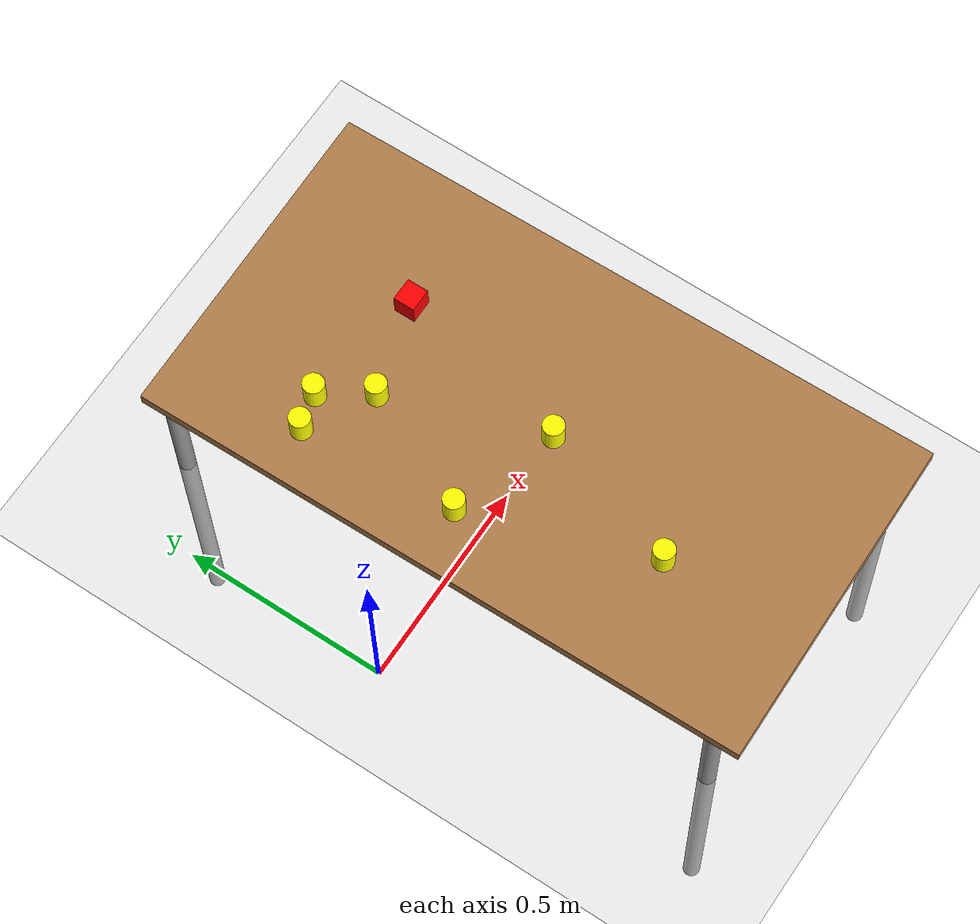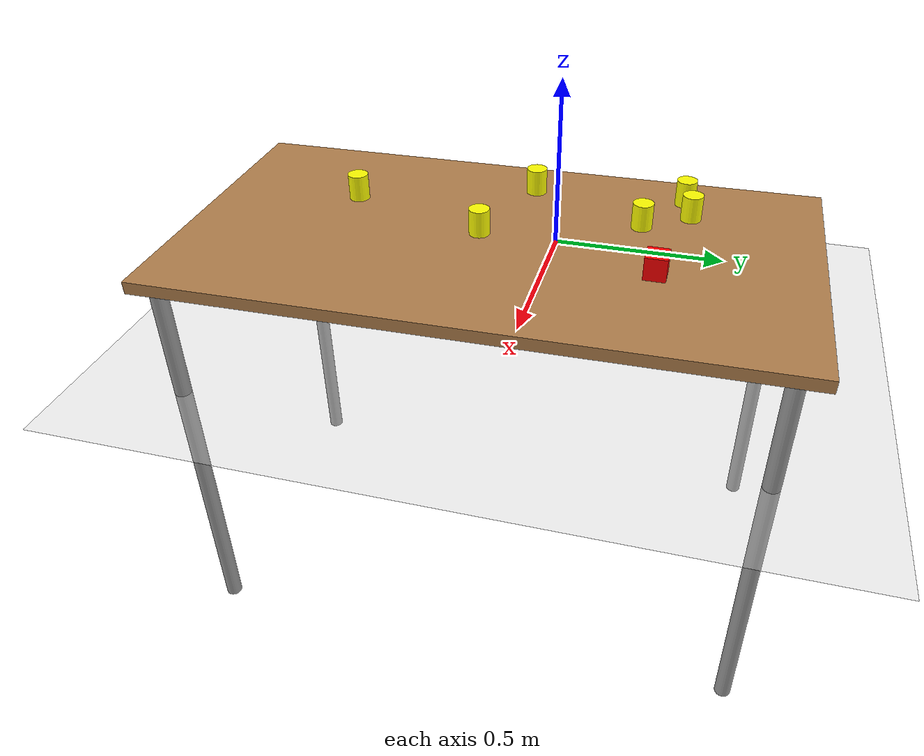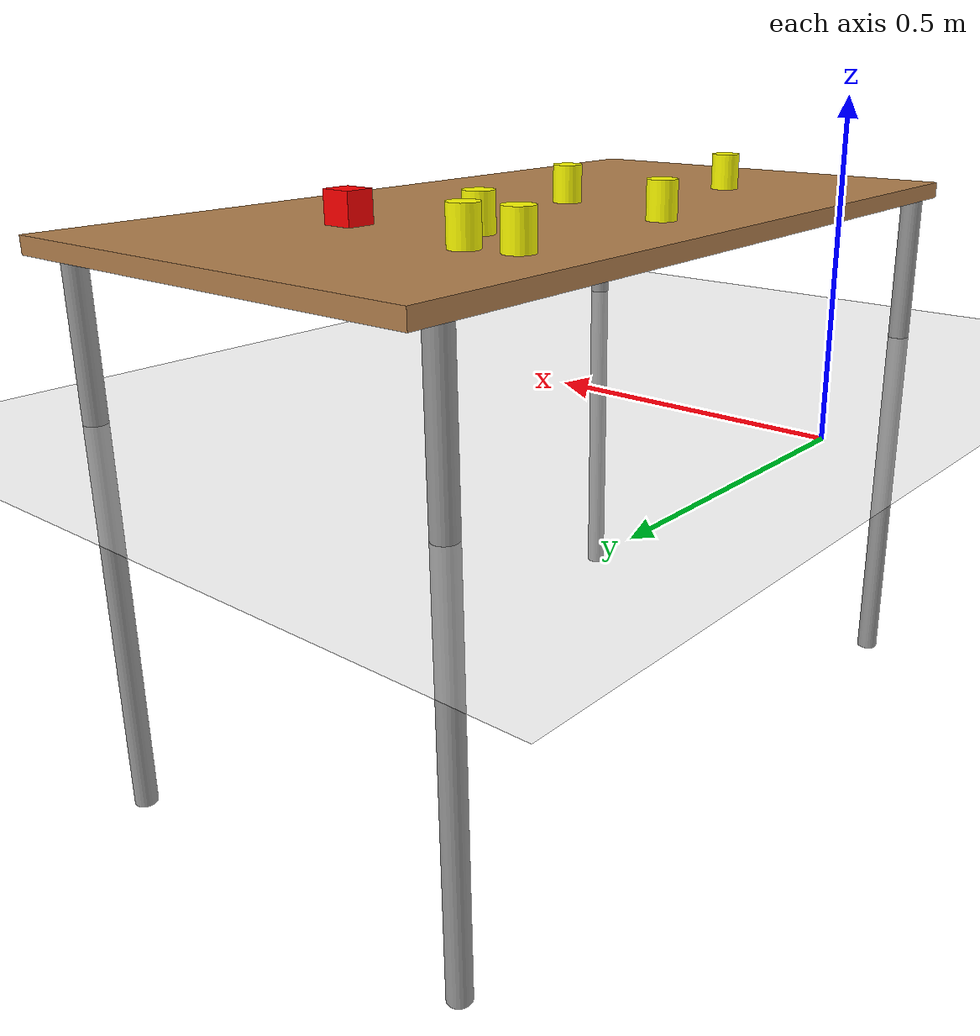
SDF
<sdf version="1.7">
 <world name="default">
  <light name="sun" type="directional">
   <pose>0 0 10 0 -0 0</pose>
   <diffuse>0.8 0.8 0.8 1</diffuse>
   <specular>0.2 0.2 0.2 1</specular>
   <attenuation>
    <range>1000</range>
    <constant>0.9</constant>
    <linear>0.01</linear>
    <quadratic>0.001</quadratic>
   </attenuation>
   <direction>-0.5 0.1 -0.9</direction>
   <spot><inner_angle>0</inner_angle><outer_angle>0</outer_angle><falloff>0</falloff></spot>
  </light>
  <model name="ground_plane">
   <static>1</static>
   <link name="link">
    <collision name="collision">
     <geometry><plane><normal>0 0 1</normal><size>100 100</size></plane></geometry>
     <surface>
      <contact><collide_bitmask>65535</collide_bitmask></contact>
      <friction><ode><mu>100</mu><mu2>50</mu2></ode></friction>
     </surface>
    </collision>
    <visual name="visual">
     <cast_shadows>0</cast_shadows>
     <geometry><plane><normal>0 0 1</normal><size>100 100</size></plane></geometry>
     <material>
      <script><uri>file://media/materials/scripts/gazebo.material</uri><name>Gazebo/Grey</name></script>
     </material>
    </visual>
   </link>
  </model>
  <gravity>0 0 -9.8</gravity>
  <magnetic_field>6e-06 2.3e-05 -4.2e-05</magnetic_field>
  <atmosphere type="adiabatic"/>
  <physics name="default_physics" default="0" type="ode">
   <max_step_size>0.001</max_step_size>
   <real_time_factor>1</real_time_factor>
   <real_time_update_rate>1000</real_time_update_rate>
  </physics>
  <scene><ambient>0.4 0.4 0.4 1</ambient><background>0.7 0.7 0.7 1</background><shadows>1</shadows></scene>
  <spherical_coordinates>
   <surface_model>EARTH_WGS84</surface_model>
   <latitude_deg>0</latitude_deg>
   <longitude_deg>0</longitude_deg>
   <elevation>0</elevation>
   <heading_deg>0</heading_deg>
  </spherical_coordinates>
  <model name="table">
   <static>1</static>
   <link name="link">
    <collision name="surface">
     <pose>0 0 1 0 -0 0</pose>
     <geometry><box><size>1.5 0.8 0.03</size></box></geometry>
     <surface><friction><ode><mu>0.6</mu><mu2>0.6</mu2></ode></friction></surface>
    </collision>
    <visual name="visual1">
     <pose>0 0 1 0 -0 0</pose>
     <geometry><box><size>1.5 0.8 0.03</size></box></geometry>
     <material>
      <script><uri>file://media/materials/scripts/gazebo.material</uri><name>Gazebo/Wood</name></script>
     </material>
    </visual>
    <collision name="front_left_leg">
     <pose>0.68 0.38 0.5 0 -0 0</pose>
     <geometry><cylinder><radius>0.02</radius><length>1</length></cylinder></geometry>
    </collision>
    <visual name="front_left_leg">
     <pose>0.68 0.38 0.5 0 -0 0</pose>
     <geometry><cylinder><radius>0.02</radius><length>1</length></cylinder></geometry>
     <material>
      <script><uri>file://media/materials/scripts/gazebo.material</uri><name>Gazebo/Grey</name></script>
     </material>
    </visual>
    <collision name="front_right_leg">
     <pose>0.68 -0.38 0.5 0 -0 0</pose>
     <geometry><cylinder><radius>0.02</radius><length>1</length></cylinder></geometry>
    </collision>
    <visual name="front_right_leg">
     <pose>0.68 -0.38 0.5 0 -0 0</pose>
     <geometry><cylinder><radius>0.02</radius><length>1</length></cylinder></geometry>
     <material>
      <script><uri>file://media/materials/scripts/gazebo.material</uri><name>Gazebo/Grey</name></script>
     </material>
    </visual>
    <collision name="back_right_leg">
     <pose>-0.68 -0.38 0.5 0 -0 0</pose>
     <geometry><cylinder><radius>0.02</radius><length>1</length></cylinder></geometry>
    </collision>
    <visual name="back_right_leg">
     <pose>-0.68 -0.38 0.5 0 -0 0</pose>
     <geometry><cylinder><radius>0.02</radius><length>1</length></cylinder></geometry>
     <material>
      <script><uri>file://media/materials/scripts/gazebo.material</uri><name>Gazebo/Grey</name></script>
     </material>
    </visual>
    <collision name="back_left_leg">
     <pose>-0.68 0.38 0.5 0 -0 0</pose>
     <geometry><cylinder><radius>0.02</radius><length>1</length></cylinder></geometry>
    </collision>
    <visual name="back_left_leg">
     <pose>-0.68 0.38 0.5 0 -0 0</pose>
     <geometry><cylinder><radius>0.02</radius><length>1</length></cylinder></geometry>
     <material>
      <script><uri>file://media/materials/scripts/gazebo.material</uri><name>Gazebo/Grey</name></script>
     </material>
    </visual>
   </link>
   <pose>0.566212 -0.031995 -0.712212 0 -0 1.5857</pose>
  </model>
  <model name="Untitled_clone_0">
   <link name="link_0">
    <inertial>
     <mass>0.00511254</mass>
     <inertia>
      <ixx>2.491e-05</ixx>
      <ixy>0</ixy>
      <ixz>0</ixz>
      <iyy>2.97e-05</iyy>
      <iyz>0</iyz>
      <izz>2.319e-05</izz>
     </inertia>
    </inertial>
    <visual name="visual">
     <geometry><box><size>0.05539 0.05172 0.055441</size></box></geometry>
     <material>
      <lighting>1</lighting>
      <script><uri>file://media/materials/scripts/gazebo.material</uri><name>Gazebo/Grey</name></script>
      <shader type="pixel"><normal_map>__default__</normal_map></shader>
      <ambient>1 0 0 0</ambient>
      <diffuse>1 0 0 1</diffuse>
      <specular>1 0.01 0 1</specular>
      <emissive>0 0 0 1</emissive>
     </material>
    </visual>
    <collision name="collision">
     <geometry><box><size>0.05539 0.05172 0.055441</size></box></geometry>
     <surface>
      <friction>
       <ode><mu>1</mu><mu2>1</mu2><fdir1>0 0 0</fdir1><slip1>0</slip1><slip2>0</slip2></ode>
       <torsional>
        <coefficient>1</coefficient>
        <patch_radius>0</patch_radius>
        <surface_radius>0</surface_radius>
        <use_patch_radius>1</use_patch_radius>
        <ode><slip>0</slip></ode>
       </torsional>
      </friction>
      <bounce><restitution_coefficient>0</restitution_coefficient><threshold>1e+06</threshold></bounce>
      <contact>
       <collide_without_contact>0</collide_without_contact>
       <collide_without_contact_bitmask>1</collide_without_contact_bitmask>
       <collide_bitmask>1</collide_bitmask>
       <ode>
        <soft_cfm>0</soft_cfm>
        <soft_erp>0.2</soft_erp>
        <kp>1e+13</kp>
        <kd>1</kd>
        <max_vel>0.01</max_vel>
        <min_depth>0</min_depth>
       </ode>
       <bullet>
        <split_impulse>1</split_impulse>
        <split_impulse_penetration_threshold>-0.01</split_impulse_penetration_threshold>
        <soft_cfm>0</soft_cfm>
        <soft_erp>0.2</soft_erp>
        <kp>1e+13</kp>
        <kd>1</kd>
       </bullet>
      </contact>
     </surface>
    </collision>
   </link>
   <static>0</static>
   <pose>0.653564 0.347624 0.330499 -3.14159 -0 -3.14108</pose>
  </model>
  <model name="unit_cylinder">
   <link name="link">
    <inertial>
     <mass>1</mass>
     <inertia><ixx>0.145833</ixx><ixy>0</ixy><ixz>0</ixz><iyy>0.145833</iyy><iyz>0</iyz><izz>0.125</izz></inertia>
    </inertial>
    <visual name="visual">
     <geometry><cylinder><radius>0.0252148</radius><length>0.0648922</length></cylinder></geometry>
     <material>
      <script><name>Gazebo/Grey</name><uri>file://media/materials/scripts/gazebo.material</uri></script>
      <shader type="pixel"><normal_map>__default__</normal_map></shader>
      <ambient>1 1 0 0</ambient>
      <diffuse>1 1 0 0</diffuse>
      <specular>1 1 0 0</specular>
      <emissive>1 1 0 0</emissive>
     </material>
    </visual>
    <collision name="collision">
     <geometry><cylinder><radius>0.025215</radius><length>0.064892</length></cylinder></geometry>
     <surface>
      <friction>
       <ode><mu>1</mu><mu2>1</mu2><fdir1>0 0 0</fdir1><slip1>0</slip1><slip2>0</slip2></ode>
       <torsional>
        <coefficient>1</coefficient>
        <patch_radius>0</patch_radius>
        <surface_radius>0</surface_radius>
        <use_patch_radius>1</use_patch_radius>
        <ode><slip>0</slip></ode>
       </torsional>
      </friction>
      <bounce><restitution_coefficient>0</restitution_coefficient><threshold>1e+06</threshold></bounce>
      <contact>
       <collide_without_contact>0</collide_without_contact>
       <collide_without_contact_bitmask>1</collide_without_contact_bitmask>
       <collide_bitmask>1</collide_bitmask>
       <ode>
        <soft_cfm>0</soft_cfm>
        <soft_erp>0.2</soft_erp>
        <kp>1e+13</kp>
        <kd>1</kd>
        <max_vel>0.01</max_vel>
        <min_depth>0</min_depth>
       </ode>
       <bullet>
        <split_impulse>1</split_impulse>
        <split_impulse_penetration_threshold>-0.01</split_impulse_penetration_threshold>
        <soft_cfm>0</soft_cfm>
        <soft_erp>0.2</soft_erp>
        <kp>1e+13</kp>
        <kd>1</kd>
       </bullet>
      </contact>
     </surface>
    </collision>
   </link>
   <static>0</static>
   <pose>0.280905 0.3776 0.335241 -0.000155 0.00023 0.503097</pose>
  </model>
  <model name="unit_cylinder_clone">
   <link name="link">
    <inertial>
     <mass>1</mass>
     <inertia><ixx>0.145833</ixx><ixy>0</ixy><ixz>0</ixz><iyy>0.145833</iyy><iyz>0</iyz><izz>0.125</izz></inertia>
    </inertial>
    <visual name="visual">
     <geometry><cylinder><radius>0.0252148</radius><length>0.0648922</length></cylinder></geometry>
     <material>
      <script><name>Gazebo/Grey</name><uri>file://media/materials/scripts/gazebo.material</uri></script>
      <shader type="pixel"><normal_map>__default__</normal_map></shader>
      <ambient>1 1 0 0</ambient>
      <diffuse>1 1 0 0</diffuse>
      <specular>1 1 0 0</specular>
      <emissive>1 1 0 0</emissive>
     </material>
    </visual>
    <collision name="collision">
     <geometry><cylinder><radius>0.025215</radius><length>0.064892</length></cylinder></geometry>
     <surface>
      <friction>
       <ode><mu>1</mu><mu2>1</mu2><fdir1>0 0 0</fdir1><slip1>0</slip1><slip2>0</slip2></ode>
       <torsional>
        <coefficient>1</coefficient>
        <patch_radius>0</patch_radius>
        <surface_radius>0</surface_radius>
        <use_patch_radius>1</use_patch_radius>
        <ode><slip>0</slip></ode>
       </torsional>
      </friction>
      <bounce><restitution_coefficient>0</restitution_coefficient><threshold>1e+06</threshold></bounce>
      <contact>
       <collide_without_contact>0</collide_without_contact>
       <collide_without_contact_bitmask>1</collide_without_contact_bitmask>
       <collide_bitmask>1</collide_bitmask>
       <ode>
        <soft_cfm>0</soft_cfm>
        <soft_erp>0.2</soft_erp>
        <kp>1e+13</kp>
        <kd>1</kd>
        <max_vel>0.01</max_vel>
        <min_depth>0</min_depth>
       </ode>
       <bullet>
        <split_impulse>1</split_impulse>
        <split_impulse_penetration_threshold>-0.01</split_impulse_penetration_threshold>
        <soft_cfm>0</soft_cfm>
        <soft_erp>0.2</soft_erp>
        <kp>1e+13</kp>
        <kd>1</kd>
       </bullet>
      </contact>
     </surface>
    </collision>
   </link>
   <static>0</static>
   <pose>0.435006 0.288002 0.335232 -0.000309 -6.6e-05 -5.1e-05</pose>
  </model>
  <model name="unit_cylinder_clone_0">
   <link name="link">
    <inertial>
     <mass>1</mass>
     <inertia><ixx>0.145833</ixx><ixy>0</ixy><ixz>0</ixz><iyy>0.145833</iyy><iyz>0</iyz><izz>0.125</izz></inertia>
    </inertial>
    <visual name="visual">
     <geometry><cylinder><radius>0.0252148</radius><length>0.0648922</length></cylinder></geometry>
     <material>
      <script><name>Gazebo/Grey</name><uri>file://media/materials/scripts/gazebo.material</uri></script>
      <shader type="pixel"><normal_map>__default__</normal_map></shader>
      <ambient>1 1 0 0</ambient>
      <diffuse>1 1 0 0</diffuse>
      <specular>1 1 0 0</specular>
      <emissive>1 1 0 0</emissive>
     </material>
    </visual>
    <collision name="collision">
     <geometry><cylinder><radius>0.025215</radius><length>0.064892</length></cylinder></geometry>
     <surface>
      <friction>
       <ode><mu>1</mu><mu2>1</mu2><fdir1>0 0 0</fdir1><slip1>0</slip1><slip2>0</slip2></ode>
       <torsional>
        <coefficient>1</coefficient>
        <patch_radius>0</patch_radius>
        <surface_radius>0</surface_radius>
        <use_patch_radius>1</use_patch_radius>
        <ode><slip>0</slip></ode>
       </torsional>
      </friction>
      <bounce><restitution_coefficient>0</restitution_coefficient><threshold>1e+06</threshold></bounce>
      <contact>
       <collide_without_contact>0</collide_without_contact>
       <collide_without_contact_bitmask>1</collide_without_contact_bitmask>
       <collide_bitmask>1</collide_bitmask>
       <ode>
        <soft_cfm>0</soft_cfm>
        <soft_erp>0.2</soft_erp>
        <kp>1e+13</kp>
        <kd>1</kd>
        <max_vel>0.01</max_vel>
        <min_depth>0</min_depth>
       </ode>
       <bullet>
        <split_impulse>1</split_impulse>
        <split_impulse_penetration_threshold>-0.01</split_impulse_penetration_threshold>
        <soft_cfm>0</soft_cfm>
        <soft_erp>0.2</soft_erp>
        <kp>1e+13</kp>
        <kd>1</kd>
       </bullet>
      </contact>
     </surface>
    </collision>
   </link>
   <static>0</static>
   <pose>0.452743 -0.428508 0.335236 -0.000189 1e-05 -5.9e-05</pose>
  </model>
  <model name="unit_cylinder_clone_1">
   <link name="link">
    <inertial>
     <mass>1</mass>
     <inertia><ixx>0.145833</ixx><ixy>0</ixy><ixz>0</ixz><iyy>0.145833</iyy><iyz>0</iyz><izz>0.125</izz></inertia>
    </inertial>
    <visual name="visual">
     <geometry><cylinder><radius>0.0252148</radius><length>0.0648922</length></cylinder></geometry>
     <material>
      <script><name>Gazebo/Grey</name><uri>file://media/materials/scripts/gazebo.material</uri></script>
      <shader type="pixel"><normal_map>__default__</normal_map></shader>
      <ambient>1 1 0 0</ambient>
      <diffuse>1 1 0 0</diffuse>
      <specular>1 1 0 0</specular>
      <emissive>1 1 0 0</emissive>
     </material>
    </visual>
    <collision name="collision">
     <geometry><cylinder><radius>0.025215</radius><length>0.064892</length></cylinder></geometry>
     <surface>
      <friction>
       <ode><mu>1</mu><mu2>1</mu2><fdir1>0 0 0</fdir1><slip1>0</slip1><slip2>0</slip2></ode>
       <torsional>
        <coefficient>1</coefficient>
        <patch_radius>0</patch_radius>
        <surface_radius>0</surface_radius>
        <use_patch_radius>1</use_patch_radius>
        <ode><slip>0</slip></ode>
       </torsional>
      </friction>
      <bounce><restitution_coefficient>0</restitution_coefficient><threshold>1e+06</threshold></bounce>
      <contact>
       <collide_without_contact>0</collide_without_contact>
       <collide_without_contact_bitmask>1</collide_without_contact_bitmask>
       <collide_bitmask>1</collide_bitmask>
       <ode>
        <soft_cfm>0</soft_cfm>
        <soft_erp>0.2</soft_erp>
        <kp>1e+13</kp>
        <kd>1</kd>
        <max_vel>0.01</max_vel>
        <min_depth>0</min_depth>
       </ode>
       <bullet>
        <split_impulse>1</split_impulse>
        <split_impulse_penetration_threshold>-0.01</split_impulse_penetration_threshold>
        <soft_cfm>0</soft_cfm>
        <soft_erp>0.2</soft_erp>
        <kp>1e+13</kp>
        <kd>1</kd>
       </bullet>
      </contact>
     </surface>
    </collision>
   </link>
   <static>0</static>
   <pose>0.561898 -0.081175 0.335239 -0.000119 0.000149 0.00215</pose>
  </model>
  <model name="unit_cylinder_clone_2">
   <link name="link">
    <inertial>
     <mass>1</mass>
     <inertia><ixx>0.145833</ixx><ixy>0</ixy><ixz>0</ixz><iyy>0.145833</iyy><iyz>0</iyz><izz>0.125</izz></inertia>
    </inertial>
    <visual name="visual">
     <geometry><cylinder><radius>0.0252148</radius><length>0.0648922</length></cylinder></geometry>
     <material>
      <script><name>Gazebo/Grey</name><uri>file://media/materials/scripts/gazebo.material</uri></script>
      <shader type="pixel"><normal_map>__default__</normal_map></shader>
      <ambient>1 1 0 0</ambient>
      <diffuse>1 1 0 0</diffuse>
      <specular>1 1 0 0</specular>
      <emissive>1 1 0 0</emissive>
     </material>
    </visual>
    <collision name="collision">
     <geometry><cylinder><radius>0.025215</radius><length>0.064892</length></cylinder></geometry>
     <surface>
      <friction>
       <ode><mu>1</mu><mu2>1</mu2><fdir1>0 0 0</fdir1><slip1>0</slip1><slip2>0</slip2></ode>
       <torsional>
        <coefficient>1</coefficient>
        <patch_radius>0</patch_radius>
        <surface_radius>0</surface_radius>
        <use_patch_radius>1</use_patch_radius>
        <ode><slip>0</slip></ode>
       </torsional>
      </friction>
      <bounce><restitution_coefficient>0</restitution_coefficient><threshold>1e+06</threshold></bounce>
      <contact>
       <collide_without_contact>0</collide_without_contact>
       <collide_without_contact_bitmask>1</collide_without_contact_bitmask>
       <collide_bitmask>1</collide_bitmask>
       <ode>
        <soft_cfm>0</soft_cfm>
        <soft_erp>0.2</soft_erp>
        <kp>1e+13</kp>
        <kd>1</kd>
        <max_vel>0.01</max_vel>
        <min_depth>0</min_depth>
       </ode>
       <bullet>
        <split_impulse>1</split_impulse>
        <split_impulse_penetration_threshold>-0.01</split_impulse_penetration_threshold>
        <soft_cfm>0</soft_cfm>
        <soft_erp>0.2</soft_erp>
        <kp>1e+13</kp>
        <kd>1</kd>
       </bullet>
      </contact>
     </surface>
    </collision>
   </link>
   <static>0</static>
   <pose>0.306015 0.000719 0.335242 -0.000287 0.000149 -6.8e-05</pose>
  </model>
  <model name="unit_cylinder_clone_3">
   <link name="link">
    <inertial>
     <mass>1</mass>
     <inertia><ixx>0.145833</ixx><ixy>0</ixy><ixz>0</ixz><iyy>0.145833</iyy><iyz>0</iyz><izz>0.125</izz></inertia>
    </inertial>
    <visual name="visual">
     <geometry><cylinder><radius>0.0252148</radius><length>0.0648922</length></cylinder></geometry>
     <material>
      <script><name>Gazebo/Grey</name><uri>file://media/materials/scripts/gazebo.material</uri></script>
      <shader type="pixel"><normal_map>__default__</normal_map></shader>
      <ambient>1 1 0 0</ambient>
      <diffuse>1 1 0 0</diffuse>
      <specular>1 1 0 0</specular>
      <emissive>1 1 0 0</emissive>
     </material>
    </visual>
    <collision name="collision">
     <geometry><cylinder><radius>0.025215</radius><length>0.064892</length></cylinder></geometry>
     <surface>
      <friction>
       <ode><mu>1</mu><mu2>1</mu2><fdir1>0 0 0</fdir1><slip1>0</slip1><slip2>0</slip2></ode>
       <torsional>
        <coefficient>1</coefficient>
        <patch_radius>0</patch_radius>
        <surface_radius>0</surface_radius>
        <use_patch_radius>1</use_patch_radius>
        <ode><slip>0</slip></ode>
       </torsional>
      </friction>
      <bounce><restitution_coefficient>0</restitution_coefficient><threshold>1e+06</threshold></bounce>
      <contact>
       <collide_without_contact>0</collide_without_contact>
       <collide_without_contact_bitmask>1</collide_without_contact_bitmask>
       <collide_bitmask>1</collide_bitmask>
       <ode>
        <soft_cfm>0</soft_cfm>
        <soft_erp>0.2</soft_erp>
        <kp>1e+13</kp>
        <kd>1</kd>
        <max_vel>0.01</max_vel>
        <min_depth>0</min_depth>
       </ode>
       <bullet>
        <split_impulse>1</split_impulse>
        <split_impulse_penetration_threshold>-0.01</split_impulse_penetration_threshold>
        <soft_cfm>0</soft_cfm>
        <soft_erp>0.2</soft_erp>
        <kp>1e+13</kp>
        <kd>1</kd>
       </bullet>
      </contact>
     </surface>
    </collision>
   </link>
   <static>0</static>
   <pose>0.361929 0.398985 0.335241 3.14134 -0.000133 -1.49247</pose>
  </model>
 </world>
</sdf>
